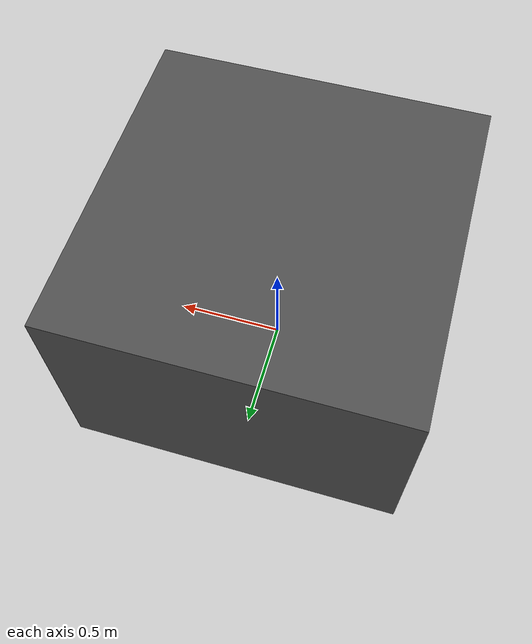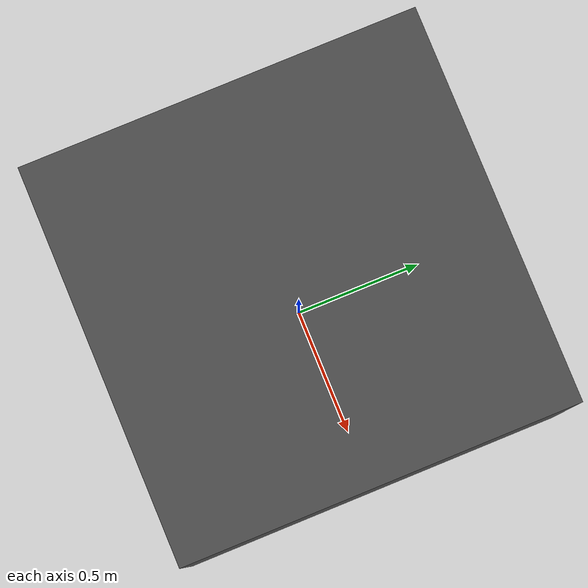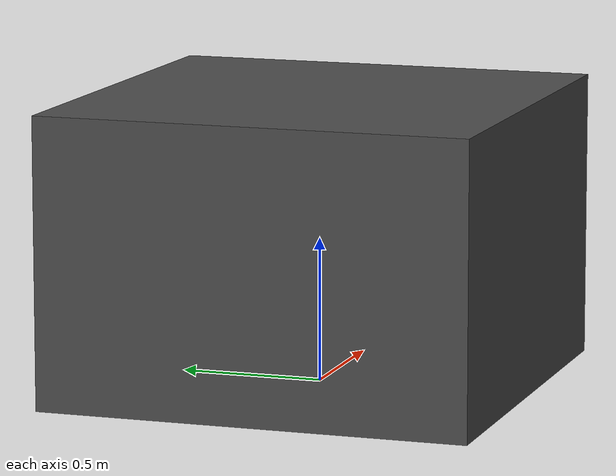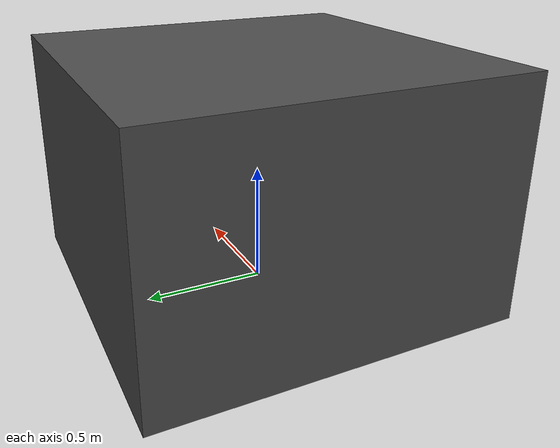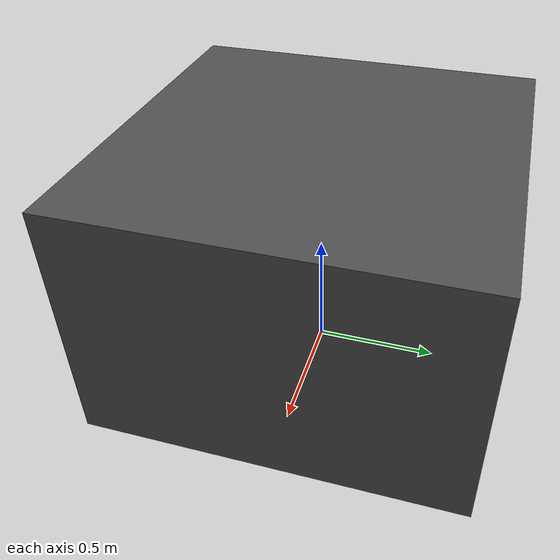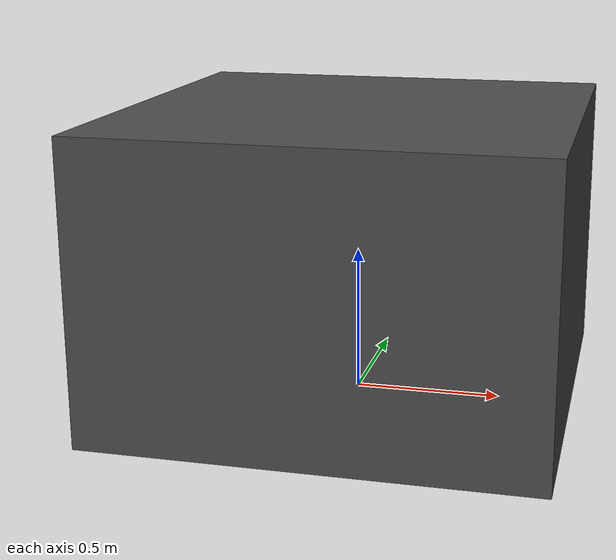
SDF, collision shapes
<sdf version="1.9">
  <model name="omnicopter">
    <self_collide>false</self_collide>
    <static>false</static>
    <link name="base_link">
      <pose>0 0 0.5 0 0 1.5707963267948966</pose>
      <inertial>
        <pose>0 0 0 0 -0 0</pose>
        <mass>8.485</mass>
        <inertia>
          <ixx>0.6937000000000001</ixx>
          <ixy>0.0001641</ixy>
          <ixz>0.0004731</ixz>
          <iyy>0.6980000000000001</iyy>
          <iyz>0.001114</iyz>
          <izz>1.3010000000000002</izz>
        </inertia>
      </inertial>
      <collision name="base_link_inertia_collision">
        <pose>0 0 0 0 0 0</pose>
        <geometry>
          <box>
            <size>1.5 1.5 1</size>
          </box>
        </geometry>
        <surface>
          <contact>
            <ode>
              <min_depth>0.001</min_depth>
              <max_vel>0</max_vel>
            </ode>
          </contact>
          <friction>
            <ode />
          </friction>
        </surface>
      </collision>
      <visual name="base_link_inertia_visual">
        <pose>0 0 0 0 0 0</pose>
        <geometry>
          <mesh>
            <scale>0.001 0.001 0.001</scale>
            <uri>model://experimental/meshes/experimental.stl</uri>
          </mesh>
        </geometry>
        <material>
          <script>
            <name>Gazebo/DarkGrey</name>
            <uri>file://media/materials/scripts/gazebo.material</uri>
          </script>
        </material>
      </visual>
      <gravity>true</gravity>
      <velocity_decay />
      <sensor name="air_pressure_sensor" type="air_pressure">
        <always_on>1</always_on>
        <update_rate>50</update_rate>
        <air_pressure>
          <pressure>
            <noise type="gaussian">
              <mean>0</mean>
              <stddev>0.01</stddev>
            </noise>
          </pressure>
        </air_pressure>
      </sensor>
      <sensor name="imu_sensor" type="imu">
        <always_on>1</always_on>
        <update_rate>250</update_rate>
        <imu>
          <angular_velocity>
            <x>
              <noise type="gaussian">
                <mean>0</mean>
                <stddev>0.00018665</stddev>
                <dynamic_bias_stddev>3.8785e-05</dynamic_bias_stddev>
                <dynamic_bias_correlation_time>1000</dynamic_bias_correlation_time>
              </noise>
            </x>
            <y>
              <noise type="gaussian">
                <mean>0</mean>
                <stddev>0.00018665</stddev>
                <dynamic_bias_stddev>3.8785e-05</dynamic_bias_stddev>
                <dynamic_bias_correlation_time>1000</dynamic_bias_correlation_time>
              </noise>
            </y>
            <z>
              <noise type="gaussian">
                <mean>0</mean>
                <stddev>0.00018665</stddev>
                <dynamic_bias_stddev>3.8785e-05</dynamic_bias_stddev>
                <dynamic_bias_correlation_time>1000</dynamic_bias_correlation_time>
              </noise>
            </z>
          </angular_velocity>
          <linear_acceleration>
            <x>
              <noise type="gaussian">
                <mean>0</mean>
                <stddev>0.00186</stddev>
                <dynamic_bias_stddev>0.006</dynamic_bias_stddev>
                <dynamic_bias_correlation_time>300</dynamic_bias_correlation_time>
              </noise>
            </x>
            <y>
              <noise type="gaussian">
                <mean>0</mean>
                <stddev>0.00186</stddev>
                <dynamic_bias_stddev>0.006</dynamic_bias_stddev>
                <dynamic_bias_correlation_time>300</dynamic_bias_correlation_time>
              </noise>
            </y>
            <z>
              <noise type="gaussian">
                <mean>0</mean>
                <stddev>0.00186</stddev>
                <dynamic_bias_stddev>0.006</dynamic_bias_stddev>
                <dynamic_bias_correlation_time>300</dynamic_bias_correlation_time>
              </noise>
            </z>
          </linear_acceleration>
        </imu>
      </sensor>
      <sensor name="navsat_sensor" type="navsat">
        <always_on>1</always_on>
        <update_rate>30</update_rate>
      </sensor>
    </link>
    <link name="rotor_0">
      <pose>0.49 -0.49 0.556 0.0 0.0 0.0</pose>
      <inertial>
        <pose>0 0 0 0 -0 0</pose>
        <mass>0.044</mass>
        <inertia>
          <ixx>0.6937000000000001</ixx>
          <ixy>0.0001641</ixy>
          <ixz>0.0004731</ixz>
          <iyy>0.6980000000000001</iyy>
          <iyz>0.001114</iyz>
          <izz>1.3010000000000002</izz>
        </inertia>
      </inertial>
      <collision name="rotor_0_collision">
        <pose>0 0 0 0 -0 0</pose>
        <geometry>
          <cylinder>
            <length>0.005</length>
            <radius>0.064</radius>
          </cylinder>
        </geometry>
        <surface>
          <contact>
            <ode />
          </contact>
          <friction>
            <ode />
          </friction>
        </surface>
      </collision>
      <visual name="rotor_0_visual">
        <pose>0 0 0 0 -0 0</pose>
        <geometry>
          <mesh>
            <scale>0.5 0.5 0.5</scale>
            <uri>model://experimental/meshes/iris_prop_cw.dae</uri>
          </mesh>
        </geometry>
        <material>
          <script>
            <name>Gazebo/Blue</name>
            <uri>file://media/materials/scripts/gazebo.material</uri>
          </script>
        </material>
      </visual>
      <gravity>1</gravity>
      <velocity_decay />
    </link>
    <joint name="rotor_0_joint" type="revolute">
      <child>rotor_0</child>
      <parent>base_link</parent>
      <axis>
        <xyz expressed_in="__model__">0 0 1</xyz>
        <limit>
          <lower>-1e+16</lower>
          <upper>1e+16</upper>
        </limit>
        <dynamics>
          <spring_reference>0</spring_reference>
          <spring_stiffness>0</spring_stiffness>
        </dynamics>

      </axis>
    </joint>
    <link name="rotor_1">
      <pose>0.0 -0.548 0.518 0.0 1.5707963267948966 0.0</pose>
      <inertial>
        <pose>0 0 0 0 -0 0</pose>
        <mass>0.044</mass>
        <inertia>
          <ixx>0.6937000000000001</ixx>
          <ixy>0.0001641</ixy>
          <ixz>0.0004731</ixz>
          <iyy>0.6980000000000001</iyy>
          <iyz>0.001114</iyz>
          <izz>1.3010000000000002</izz>
        </inertia>
      </inertial>
      <collision name="rotor_1_collision">
        <pose>0 0 0 0 -0 0</pose>
        <geometry>
          <cylinder>
            <length>0.005</length>
            <radius>0.064</radius>
          </cylinder>
        </geometry>
        <surface>
          <contact>
            <ode />
          </contact>
          <friction>
            <ode />
          </friction>
        </surface>
      </collision>
      <visual name="rotor_1_visual">
        <pose>0 0 0 0 -0 0</pose>
        <geometry>
          <mesh>
            <scale>0.5 0.5 0.5</scale>
            <uri>model://experimental/meshes/iris_prop_cw.dae</uri>
          </mesh>
        </geometry>
        <material>
          <script>
            <name>Gazebo/DarkGrey</name>
            <uri>file://media/materials/scripts/gazebo.material</uri>
          </script>
        </material>
      </visual>
      <gravity>1</gravity>
      <velocity_decay />
    </link>
    <joint name="rotor_1_joint" type="revolute">
      <child>rotor_1</child>
      <parent>base_link</parent>
      <axis>
        <xyz expressed_in="__model__">0 1 0</xyz>
        <limit>
          <lower>-1e+16</lower>
          <upper>1e+16</upper>
        </limit>
        <dynamics>
          <spring_reference>0</spring_reference>
          <spring_stiffness>0</spring_stiffness>
        </dynamics>
      </axis>
    </joint>
    <link name="rotor_2">
      <pose>-0.49 -0.49 0.556 0.0 0.0 0.0</pose>
      <inertial>
        <pose>0 0 0 0 -0 0</pose>
        <mass>0.044</mass>
        <inertia>
          <ixx>0.6937000000000001</ixx>
          <ixy>0.0001641</ixy>
          <ixz>0.0004731</ixz>
          <iyy>0.6980000000000001</iyy>
          <iyz>0.001114</iyz>
          <izz>1.3010000000000002</izz>
        </inertia>
      </inertial>
      <collision name="rotor_2_collision">
        <pose>0 0 0 0 -0 0</pose>
        <geometry>
          <cylinder>
            <length>0.005</length>
            <radius>0.064</radius>
          </cylinder>
        </geometry>
        <surface>
          <contact>
            <ode />
          </contact>
          <friction>
            <ode />
          </friction>
        </surface>
      </collision>
      <visual name="rotor_2_visual">
        <pose>0 0 0 0 -0 0</pose>
        <geometry>
          <mesh>
            <scale>0.5 0.5 0.5</scale>
            <uri>model://experimental/meshes/iris_prop_ccw.dae</uri>
          </mesh>
        </geometry>
        <material>
          <script>
            <name>Gazebo/Blue</name>
            <uri>file://media/materials/scripts/gazebo.material</uri>
          </script>
        </material>
      </visual>
      <gravity>1</gravity>
      <velocity_decay />
    </link>
    <joint name="rotor_2_joint" type="revolute">
      <child>rotor_2</child>
      <parent>base_link</parent>
      <axis>
        <xyz expressed_in="__model__">0 0 1</xyz>
        <limit>
          <lower>-1e+16</lower>
          <upper>1e+16</upper>
        </limit>
        <dynamics>
          <spring_reference>0</spring_reference>
          <spring_stiffness>0</spring_stiffness>
        </dynamics>

      </axis>
    </joint>
    <link name="rotor_3">
      <pose>-0.548 0.0 0.518 0.0 1.5707963267948966 0.0</pose>
      <inertial>
        <pose>0 0 0 0 -0 0</pose>
        <mass>0.044</mass>
        <inertia>
          <ixx>0.6937000000000001</ixx>
          <ixy>0.0001641</ixy>
          <ixz>0.0004731</ixz>
          <iyy>0.6980000000000001</iyy>
          <iyz>0.001114</iyz>
          <izz>1.3010000000000002</izz>
        </inertia>
      </inertial>
      <collision name="rotor_3_collision">
        <pose>0 0 0 0 -0 0</pose>
        <geometry>
          <cylinder>
            <length>0.005</length>
            <radius>0.064</radius>
          </cylinder>
        </geometry>
        <surface>
          <contact>
            <ode />
          </contact>
          <friction>
            <ode />
          </friction>
        </surface>
      </collision>
      <visual name="rotor_3_visual">
        <pose>0 0 0 0 -0 0</pose>
        <geometry>
          <mesh>
            <scale>0.5 0.5 0.5</scale>
            <uri>model://experimental/meshes/iris_prop_ccw.dae</uri>
          </mesh>
        </geometry>
        <material>
          <script>
            <name>Gazebo/DarkGrey</name>
            <uri>file://media/materials/scripts/gazebo.material</uri>
          </script>
        </material>
      </visual>
      <gravity>1</gravity>
      <velocity_decay />
    </link>
    <joint name="rotor_3_joint" type="revolute">
      <child>rotor_3</child>
      <parent>base_link</parent>
      <axis>
        <xyz expressed_in="__model__">1 0 0</xyz>
        <limit>
          <lower>-1e+16</lower>
          <upper>1e+16</upper>
        </limit>
        <dynamics>
          <spring_reference>0</spring_reference>
          <spring_stiffness>0</spring_stiffness>
        </dynamics>

      </axis>
    </joint>
    <link name="rotor_4">
      <pose>-0.49 0.49 0.556 0.0 0.0 0.0</pose>
      <inertial>
        <pose>0 0 0 0 -0 0</pose>
        <mass>0.044</mass>
        <inertia>
          <ixx>0.6937000000000001</ixx>
          <ixy>0.0001641</ixy>
          <ixz>0.0004731</ixz>
          <iyy>0.6980000000000001</iyy>
          <iyz>0.001114</iyz>
          <izz>1.3010000000000002</izz>
        </inertia>
      </inertial>
      <collision name="rotor_4_collision">
        <pose>0 0 0 0 -0 0</pose>
        <geometry>
          <cylinder>
            <length>0.005</length>
            <radius>0.064</radius>
          </cylinder>
        </geometry>
        <surface>
          <contact>
            <ode />
          </contact>
          <friction>
            <ode />
          </friction>
        </surface>
      </collision>
      <visual name="rotor_4_visual">
        <pose>0 0 0 0 -0 0</pose>
        <geometry>
          <mesh>
            <scale>0.5 0.5 0.5</scale>
            <uri>model://experimental/meshes/iris_prop_cw.dae</uri>
          </mesh>
        </geometry>
        <material>
          <script>
            <name>Gazebo/DarkGrey</name>
            <uri>file://media/materials/scripts/gazebo.material</uri>
          </script>
        </material>
      </visual>
      <gravity>1</gravity>
      <velocity_decay />
    </link>
    <joint name="rotor_4_joint" type="revolute">
      <child>rotor_4</child>
      <parent>base_link</parent>
      <axis>
        <xyz expressed_in="__model__">0 0 1</xyz>
        <limit>
          <lower>-1e+16</lower>
          <upper>1e+16</upper>
        </limit>
        <dynamics>
          <spring_reference>0</spring_reference>
          <spring_stiffness>0</spring_stiffness>
        </dynamics>

      </axis>
    </joint>
    <link name="rotor_5">
      <pose>0.0 0.548 0.518 0.0 1.5707963267948966 0.0</pose>
      <inertial>
        <pose>0 0 0 0 -0 0</pose>
        <mass>0.044</mass>
        <inertia>
          <ixx>0.6937000000000001</ixx>
          <ixy>0.0001641</ixy>
          <ixz>0.0004731</ixz>
          <iyy>0.6980000000000001</iyy>
          <iyz>0.001114</iyz>
          <izz>1.3010000000000002</izz>
        </inertia>
      </inertial>
      <collision name="rotor_5_collision">
        <pose>0 0 0 0 -0 0</pose>
        <geometry>
          <cylinder>
            <length>0.005</length>
            <radius>0.064</radius>
          </cylinder>
        </geometry>
        <surface>
          <contact>
            <ode />
          </contact>
          <friction>
            <ode />
          </friction>
        </surface>
      </collision>
      <visual name="rotor_5_visual">
        <pose>0 0 0 0 -0 0</pose>
        <geometry>
          <mesh>
            <scale>0.5 0.5 0.5</scale>
            <uri>model://experimental/meshes/iris_prop_cw.dae</uri>
          </mesh>
        </geometry>
        <material>
          <script>
            <name>Gazebo/DarkGrey</name>
            <uri>file://media/materials/scripts/gazebo.material</uri>
          </script>
        </material>
      </visual>
      <gravity>1</gravity>
      <velocity_decay />
    </link>
    <joint name="rotor_5_joint" type="revolute">
      <child>rotor_5</child>
      <parent>base_link</parent>
      <axis>
        <xyz expressed_in="__model__">0 -1 0</xyz>
        <limit>
          <lower>-1e+16</lower>
          <upper>1e+16</upper>
        </limit>
        <dynamics>
          <spring_reference>0</spring_reference>
          <spring_stiffness>0</spring_stiffness>
        </dynamics>

      </axis>
    </joint>
    <link name="rotor_6">
      <pose>0.49 0.49 0.556 0.0 0.0 0.0</pose>
      <inertial>
        <pose>0 0 0 0 -0 0</pose>
        <mass>0.044</mass>
        <inertia>
          <ixx>0.6937000000000001</ixx>
          <ixy>0.0001641</ixy>
          <ixz>0.0004731</ixz>
          <iyy>0.6980000000000001</iyy>
          <iyz>0.001114</iyz>
          <izz>1.3010000000000002</izz>
        </inertia>
      </inertial>
      <collision name="rotor_6_collision">
        <pose>0 0 0 0 -0 0</pose>
        <geometry>
          <cylinder>
            <length>0.005</length>
            <radius>0.064</radius>
          </cylinder>
        </geometry>
        <surface>
          <contact>
            <ode />
          </contact>
          <friction>
            <ode />
          </friction>
        </surface>
      </collision>
      <visual name="rotor_6_visual">
        <pose>0 0 0 0 -0 0</pose>
        <geometry>
          <mesh>
            <scale>0.5 0.5 0.5</scale>
            <uri>model://experimental/meshes/iris_prop_ccw.dae</uri>
          </mesh>
        </geometry>
        <material>
          <script>
            <name>Gazebo/DarkGrey</name>
            <uri>file://media/materials/scripts/gazebo.material</uri>
          </script>
        </material>
      </visual>
      <gravity>1</gravity>
      <velocity_decay />
    </link>
    <joint name="rotor_6_joint" type="revolute">
      <child>rotor_6</child>
      <parent>base_link</parent>
      <axis>
        <xyz expressed_in="__model__">0 0 1</xyz>
        <limit>
          <lower>-1e+16</lower>
          <upper>1e+16</upper>
        </limit>
        <dynamics>
          <spring_reference>0</spring_reference>
          <spring_stiffness>0</spring_stiffness>
        </dynamics>
      </axis>
    </joint>
    <link name="rotor_7">
      <pose>0.548 0.0 0.518 0.0 1.5707963267948966 0.0</pose>
      <inertial>
        <pose>0 0 0 0 -0 0</pose>
        <mass>0.044</mass>
        <inertia>
          <ixx>0.6937000000000001</ixx>
          <ixy>0.0001641</ixy>
          <ixz>0.0004731</ixz>
          <iyy>0.6980000000000001</iyy>
          <iyz>0.001114</iyz>
          <izz>1.3010000000000002</izz>
        </inertia>
      </inertial>
      <collision name="rotor_7_collision">
        <pose>0 0 0 0 -0 0</pose>
        <geometry>
          <cylinder>
            <length>0.005</length>
            <radius>0.064</radius>
          </cylinder>
        </geometry>
        <surface>
          <contact>
            <ode />
          </contact>
          <friction>
            <ode />
          </friction>
        </surface>
      </collision>
      <visual name="rotor_7_visual">
        <pose>0 0 0 0 -0 0</pose>
        <geometry>
          <mesh>
            <scale>0.5 0.5 0.5</scale>
            <uri>model://experimental/meshes/iris_prop_ccw.dae</uri>
          </mesh>
        </geometry>
        <material>
          <script>
            <name>Gazebo/DarkGrey</name>
            <uri>file://media/materials/scripts/gazebo.material</uri>
          </script>
        </material>
      </visual>
      <gravity>1</gravity>
      <velocity_decay />
    </link>
    <joint name="rotor_7_joint" type="revolute">
      <child>rotor_7</child>
      <parent>base_link</parent>
      <axis>
        <xyz expressed_in="__model__">-1 0 0</xyz>
        <limit>
          <lower>-1e+16</lower>
          <upper>1e+16</upper>
        </limit>
        <dynamics>
          <spring_reference>0</spring_reference>
          <spring_stiffness>0</spring_stiffness>
        </dynamics>
      </axis>
    </joint>

    <plugin filename="gz-sim-multicopter-motor-model-system" name="gz::sim::systems::MulticopterMotorModel">
      <jointName>rotor_0_joint</jointName>
      <linkName>rotor_0</linkName>
      <turningDirection>cw</turningDirection>
      <timeConstantUp>0.0125</timeConstantUp>
      <timeConstantDown>0.025</timeConstantDown>
      <maxRotVelocity>790</maxRotVelocity>
      <motorConstant>3.8097e-05</motorConstant>
      <momentConstant>0.03</momentConstant>
      <commandSubTopic>command/motor_speed</commandSubTopic>
      <motorNumber>0</motorNumber>
      <rotorDragCoefficient>0.000175</rotorDragCoefficient>
      <rollingMomentCoefficient>1e-06</rollingMomentCoefficient>
      <rotorVelocitySlowdownSim>10</rotorVelocitySlowdownSim>
      <motorType>velocity</motorType>
    </plugin>
    <plugin filename="gz-sim-multicopter-motor-model-system" name="gz::sim::systems::MulticopterMotorModel">
      <jointName>rotor_1_joint</jointName>
      <linkName>rotor_1</linkName>
      <turningDirection>cw</turningDirection>
      <timeConstantUp>0.0125</timeConstantUp>
      <timeConstantDown>0.025</timeConstantDown>
      <maxRotVelocity>790</maxRotVelocity>
      <motorConstant>3.8097e-05</motorConstant>
      <momentConstant>0.03</momentConstant>
      <commandSubTopic>command/motor_speed</commandSubTopic>
      <motorNumber>1</motorNumber>
      <rotorDragCoefficient>0.000175</rotorDragCoefficient>
      <rollingMomentCoefficient>1e-06</rollingMomentCoefficient>
      <rotorVelocitySlowdownSim>10</rotorVelocitySlowdownSim>
      <motorType>velocity</motorType>
    </plugin>
    <plugin filename="gz-sim-multicopter-motor-model-system" name="gz::sim::systems::MulticopterMotorModel">
      <jointName>rotor_2_joint</jointName>
      <linkName>rotor_2</linkName>
      <turningDirection>ccw</turningDirection>
      <timeConstantUp>0.0125</timeConstantUp>
      <timeConstantDown>0.025</timeConstantDown>
      <maxRotVelocity>790</maxRotVelocity>
      <motorConstant>3.8097e-05</motorConstant>
      <momentConstant>0.03</momentConstant>
      <commandSubTopic>command/motor_speed</commandSubTopic>
      <motorNumber>2</motorNumber>
      <rotorDragCoefficient>0.000175</rotorDragCoefficient>
      <rollingMomentCoefficient>1e-06</rollingMomentCoefficient>
      <rotorVelocitySlowdownSim>10</rotorVelocitySlowdownSim>
      <motorType>velocity</motorType>
    </plugin>
    <plugin filename="gz-sim-multicopter-motor-model-system" name="gz::sim::systems::MulticopterMotorModel">
      <jointName>rotor_3_joint</jointName>
      <linkName>rotor_3</linkName>
      <turningDirection>ccw</turningDirection>
      <timeConstantUp>0.0125</timeConstantUp>
      <timeConstantDown>0.025</timeConstantDown>
      <maxRotVelocity>790</maxRotVelocity>
      <motorConstant>3.8097e-05</motorConstant>
      <momentConstant>0.03</momentConstant>
      <commandSubTopic>command/motor_speed</commandSubTopic>
      <motorNumber>3</motorNumber>
      <rotorDragCoefficient>0.000175</rotorDragCoefficient>
      <rollingMomentCoefficient>1e-06</rollingMomentCoefficient>
      <rotorVelocitySlowdownSim>10</rotorVelocitySlowdownSim>
      <motorType>velocity</motorType>
    </plugin>
    <plugin filename="gz-sim-multicopter-motor-model-system" name="gz::sim::systems::MulticopterMotorModel">
      <jointName>rotor_4_joint</jointName>
      <linkName>rotor_4</linkName>
      <turningDirection>cw</turningDirection>
      <timeConstantUp>0.0125</timeConstantUp>
      <timeConstantDown>0.025</timeConstantDown>
      <maxRotVelocity>790</maxRotVelocity>
      <motorConstant>3.8097e-05</motorConstant>
      <momentConstant>0.03</momentConstant>
      <commandSubTopic>command/motor_speed</commandSubTopic>
      <motorNumber>4</motorNumber>
      <rotorDragCoefficient>0.000175</rotorDragCoefficient>
      <rollingMomentCoefficient>1e-06</rollingMomentCoefficient>
      <rotorVelocitySlowdownSim>10</rotorVelocitySlowdownSim>
      <motorType>velocity</motorType>
    </plugin>
    <plugin filename="gz-sim-multicopter-motor-model-system" name="gz::sim::systems::MulticopterMotorModel">
      <jointName>rotor_5_joint</jointName>
      <linkName>rotor_5</linkName>
      <turningDirection>cw</turningDirection>
      <timeConstantUp>0.0125</timeConstantUp>
      <timeConstantDown>0.025</timeConstantDown>
      <maxRotVelocity>790</maxRotVelocity>
      <motorConstant>3.8097e-05</motorConstant>
      <momentConstant>0.03</momentConstant>
      <commandSubTopic>command/motor_speed</commandSubTopic>
      <motorNumber>5</motorNumber>
      <rotorDragCoefficient>0.000175</rotorDragCoefficient>
      <rollingMomentCoefficient>1e-06</rollingMomentCoefficient>
      <rotorVelocitySlowdownSim>10</rotorVelocitySlowdownSim>
      <motorType>velocity</motorType>
    </plugin>
    <plugin filename="gz-sim-multicopter-motor-model-system" name="gz::sim::systems::MulticopterMotorModel">
      <jointName>rotor_6_joint</jointName>
      <linkName>rotor_6</linkName>
      <turningDirection>ccw</turningDirection>
      <timeConstantUp>0.0125</timeConstantUp>
      <timeConstantDown>0.025</timeConstantDown>
      <maxRotVelocity>790</maxRotVelocity>
      <motorConstant>3.8097e-05</motorConstant>
      <momentConstant>0.03</momentConstant>
      <commandSubTopic>command/motor_speed</commandSubTopic>
      <motorNumber>6</motorNumber>
      <rotorDragCoefficient>0.000175</rotorDragCoefficient>
      <rollingMomentCoefficient>1e-06</rollingMomentCoefficient>
      <rotorVelocitySlowdownSim>10</rotorVelocitySlowdownSim>
      <motorType>velocity</motorType>
    </plugin>
    <plugin filename="gz-sim-multicopter-motor-model-system" name="gz::sim::systems::MulticopterMotorModel">
      <jointName>rotor_7_joint</jointName>
      <linkName>rotor_7</linkName>
      <turningDirection>ccw</turningDirection>
      <timeConstantUp>0.0125</timeConstantUp>
      <timeConstantDown>0.025</timeConstantDown>
      <maxRotVelocity>790</maxRotVelocity>
      <motorConstant>3.8097e-05</motorConstant>
      <momentConstant>0.03</momentConstant>
      <commandSubTopic>command/motor_speed</commandSubTopic>
      <motorNumber>7</motorNumber>
      <rotorDragCoefficient>0.000175</rotorDragCoefficient>
      <rollingMomentCoefficient>1e-06</rollingMomentCoefficient>
      <rotorVelocitySlowdownSim>10</rotorVelocitySlowdownSim>
      <motorType>velocity</motorType>
    </plugin>
  </model>
</sdf>
